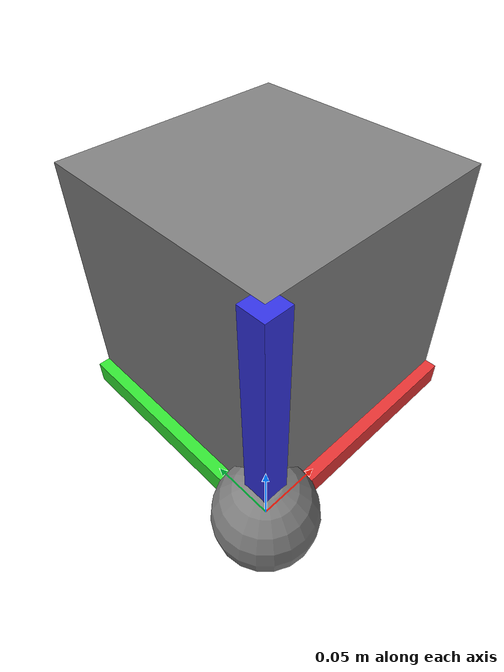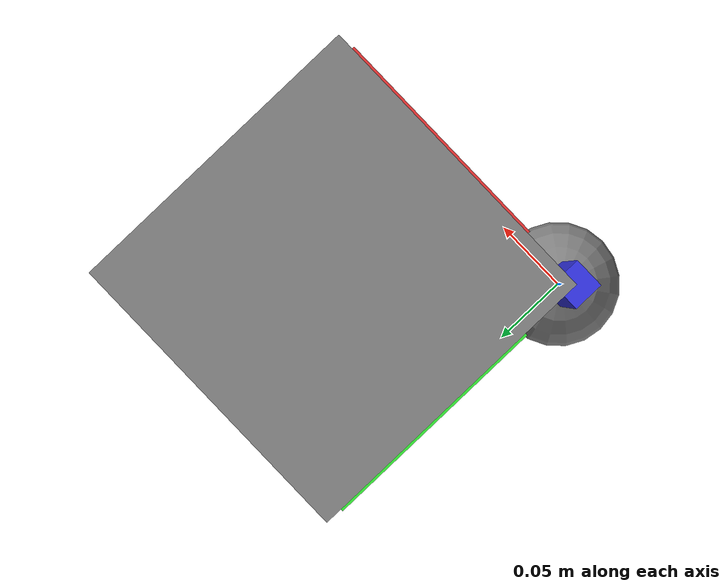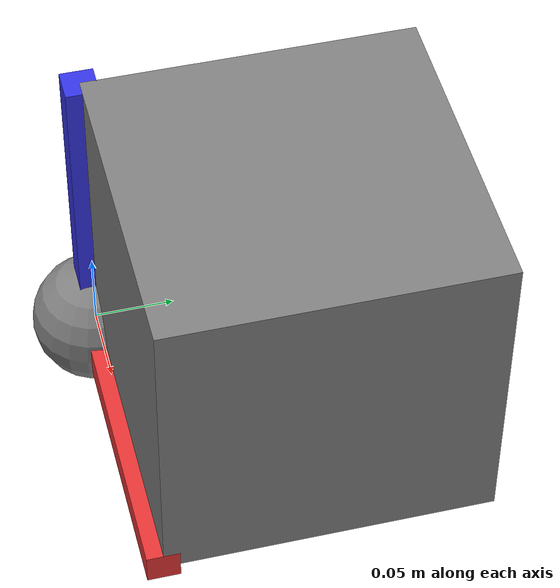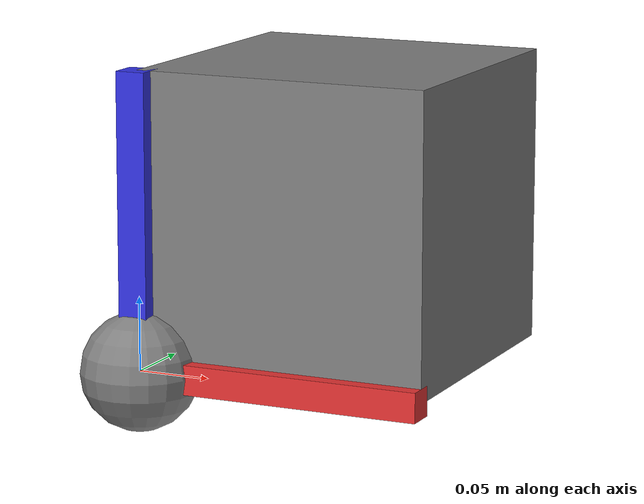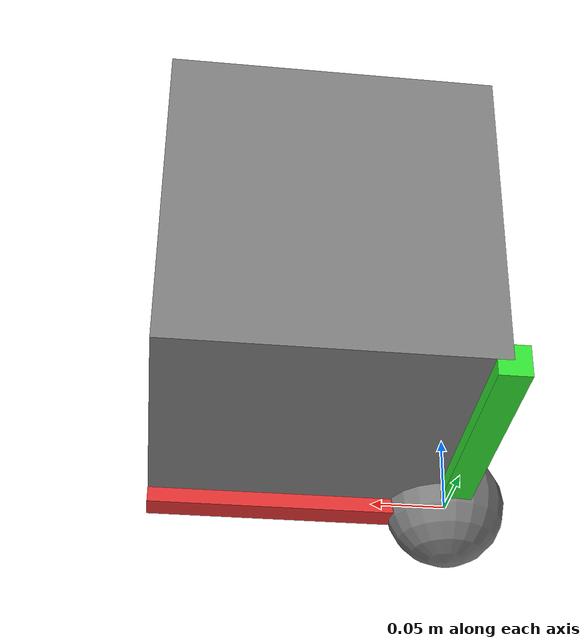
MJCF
<mujoco model="satellite_offcenter">
<!-- Copyright (c) 2023 Boston Dynamics AI Institute LLC. All rights reserved. -->
  <compiler angle="radian" autolimits="true"/>

  <option integrator="implicit" timestep="0.01" gravity="0 0 0"/>

  <visual>
    <headlight ambient=".4 .4 .4" diffuse=".8 .8 .8" specular="0.1 0.1 0.1"/>
    <map znear=".01"/>
    <quality shadowsize="8192"/>
    <global azimuth="180" elevation="-30"/>
    <scale framelength=".3" framewidth=".03"/>
  </visual>

  <asset>
    <texture name="blue_grid" type="2d" builtin="checker" rgb1=".02 .14 .44" rgb2=".27 .55 1" width="300" height="300" mark="edge" markrgb="1 1 1"/>
    <material name="blue_grid" texture="blue_grid" texrepeat="1 1" texuniform="true" reflectance=".2"/>
  </asset>

  <default>
    <material specular="0.5" shininess="0.95"/>
    <default class="axis_slide">
      <joint type="slide" damping="10"/>
      <position kp="1" forcerange="-1000 1000"/>
    </default>
  </default>

  <worldbody>
    <site name="world"/>
    <body>
      <geom mass="0" name="floor" pos="0 0 -5" size="0 0 0.05" type="plane" material="blue_grid"/>
    </body>

    <body name="satellite_sphere" gravcomp="0" pos="0 0 0">
      <joint axis="1 0 0" name="joint_x" class="axis_slide"/>
      <joint axis="0 1 0" name="joint_y" class="axis_slide"/>
      <joint axis="0 0 1" name="joint_z" class="axis_slide"/>
      <geom name="sphere" type="sphere" mass="0.1" size="0.04" pos="0 0 0"/>
      <body name="satellite_box" gravcomp="0" pos="0 0 0">
        <joint type="ball"/>
        <geom name="box" type="box" mass="0.1" size="0.10 0.10 0.10" pos="0.1 0.1 0.1"/>
        <geom name="x_axis" type="box" mass="0.0" size="0.10 0.01 0.01" pos="0.1 0 0" rgba="0.9 0.2 0.2 1"/>
        <geom name="y_axis" type="box" mass="0.0" size="0.01 0.10 0.01" pos="0 0.1 0" rgba="0.2 0.9 0.2 1"/>
        <geom name="z_axis" type="box" mass="0.0" size="0.01 0.01 0.10" pos="0 0 0.1" rgba="0.2 0.2 0.9 1"/>
        <site pos="0 0 0" name="site_box"/>
      </body>
    </body>
  </worldbody>

  <keyframe>
    <!-- mujoco q = [object_pos, object_quat] -->
    <key name="home" qpos="0 0 0   1 0 0 0" />
  </keyframe>

  <actuator>
    <position name="actuator_x" joint="joint_x" class="axis_slide"/>
    <position name="actuator_y" joint="joint_y" class="axis_slide"/>
    <position name="actuator_z" joint="joint_z" class="axis_slide"/>
  </actuator>
</mujoco>
